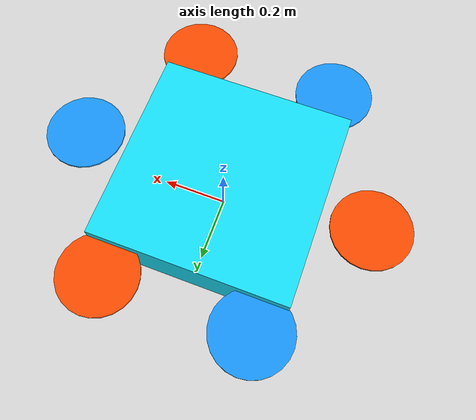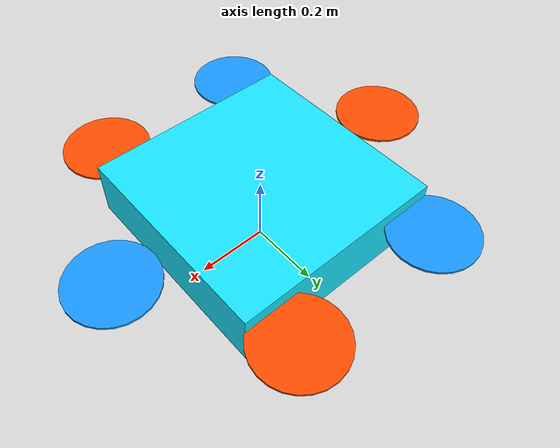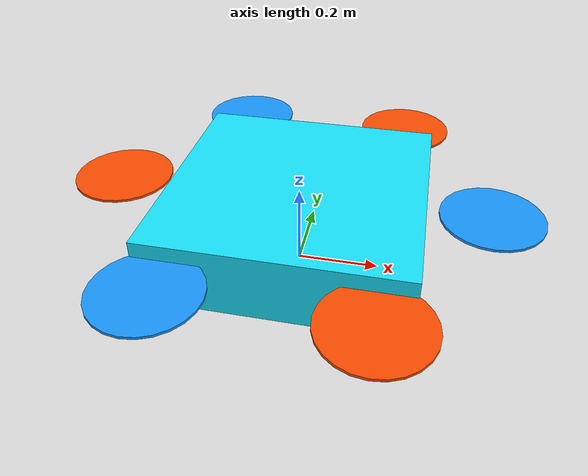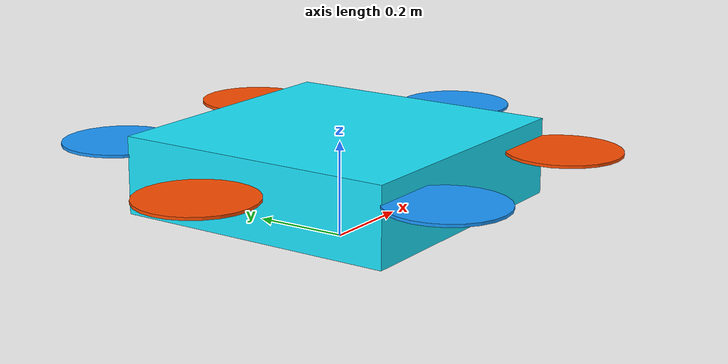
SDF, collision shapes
<?xml version="1.0" ?>
<sdf version="1.8">
  <model name="sutra_hexacopter">
    <pose>0 0 0.15 0 0 0</pose>
    <static>false</static>
    <self_collide>false</self_collide>

    <!-- ── Main Hexacopter Airframe Link ──────────────────────────────── -->
    <link name="base_link">
      <pose>0 0 0 0 0 0</pose>
      <inertial>
        <mass>2.20</mass>
        <inertia>
          <ixx>0.0450</ixx>
          <ixy>0</ixy>
          <ixz>0</ixz>
          <iyy>0.0450</iyy>
          <iyz>0</iyz>
          <izz>0.0820</izz>
        </inertia>
      </inertial>

      <collision name="base_collision">
        <geometry>
          <box><size>0.60 0.60 0.16</size></box>
        </geometry>
      </collision>

      <!-- 3D Firefly Hexacopter Frame Mesh -->
      <visual name="hexacopter_chassis">
        <geometry>
          <mesh>
            <scale>1.5 1.5 1.5</scale>
            <uri>model://x3_uav/meshes/firefly.dae</uri>
          </mesh>
        </geometry>
      </visual>

      <!-- Sensor Visual Pods -->
      <!-- 1. Top 360° LiDAR Puck -->
      <visual name="lidar_puck">
        <pose>0 0 0.08 0 0 0</pose>
        <geometry><cylinder><radius>0.04</radius><length>0.03</length></cylinder></geometry>
        <material><ambient>0.0 0.8 1.0 1</ambient><diffuse>0.1 0.9 1.0 1</diffuse><emissive>0.0 0.5 0.9 1</emissive></material>
      </visual>

      <!-- 2. Dual Camera Gimbal (RGB + FLIR) -->
      <visual name="gimbal_pod">
        <pose>0.16 0 -0.04 0 0.20 0</pose>
        <geometry><box><size>0.04 0.07 0.035</size></box></geometry>
        <material><ambient>0.15 0.15 0.15 1</ambient><diffuse>0.25 0.25 0.25 1</diffuse></material>
      </visual>

      <!-- 3. LiPo High-Capacity 6S Battery -->
      <visual name="battery_pack">
        <pose>0 0 -0.035 0 0 0</pose>
        <geometry><box><size>0.14 0.06 0.045</size></box></geometry>
        <material><ambient>0.9 0.7 0.0 1</ambient><diffuse>1.0 0.8 0.0 1</diffuse></material>
      </visual>

      <!-- 4. NavSat RTK Antenna Mast -->
      <visual name="gps_mast">
        <pose>-0.12 -0.08 0.08 0 0 0</pose>
        <geometry><cylinder><radius>0.004</radius><length>0.10</length></cylinder></geometry>
        <material><ambient>0.1 0.1 0.1 1</ambient><diffuse>0.2 0.2 0.2 1</diffuse></material>
      </visual>
      <visual name="gps_puck">
        <pose>-0.12 -0.08 0.13 0 0 0</pose>
        <geometry><cylinder><radius>0.022</radius><length>0.01</length></cylinder></geometry>
        <material><ambient>0.9 0.9 0.9 1</ambient><diffuse>1.0 1.0 1.0 1</diffuse></material>
      </visual>

      <!-- 📡 9-DOF AVIONICS SENSOR SUITE                                  -->

      <!-- 1. IMU (250Hz Accelerometer + Gyroscope) -->
      <sensor name="imu_sensor" type="imu">
        <always_on>1</always_on>
        <update_rate>250.0</update_rate>
        <topic>imu</topic>
        <imu>
          <angular_velocity>
            <x><noise type="gaussian"><stddev>0.00015</stddev><bias_mean>0.00001</bias_mean></noise></x>
            <y><noise type="gaussian"><stddev>0.00015</stddev><bias_mean>0.00001</bias_mean></noise></y>
            <z><noise type="gaussian"><stddev>0.00015</stddev><bias_mean>0.00001</bias_mean></noise></z>
          </angular_velocity>
          <linear_acceleration>
            <x><noise type="gaussian"><stddev>0.008</stddev><bias_mean>0.001</bias_mean></noise></x>
            <y><noise type="gaussian"><stddev>0.008</stddev><bias_mean>0.001</bias_mean></noise></y>
            <z><noise type="gaussian"><stddev>0.008</stddev><bias_mean>0.001</bias_mean></noise></z>
          </linear_acceleration>
        </imu>
      </sensor>

      <!-- 2. Barometer (50Hz Absolute Pressure for EKF2 Altitude Fusion) -->
      <sensor name="air_pressure_sensor" type="air_pressure">
        <always_on>1</always_on>
        <update_rate>50.0</update_rate>
        <topic>air_pressure</topic>
        <air_pressure>
          <reference_altitude>0.0</reference_altitude>
          <pressure><noise type="gaussian"><mean>0.0</mean><stddev>0.01</stddev></noise></pressure>
        </air_pressure>
      </sensor>

      <!-- 3. 3-Axis Magnetometer (50Hz Earth Magnetic Field) -->
      <sensor name="magnetometer_sensor" type="magnetometer">
        <always_on>1</always_on>
        <update_rate>50.0</update_rate>
        <topic>magnetic_field</topic>
        <magnetometer>
          <x><noise type="gaussian"><mean>0.0</mean><stddev>0.0001</stddev></noise></x>
          <y><noise type="gaussian"><mean>0.0</mean><stddev>0.0001</stddev></noise></y>
          <z><noise type="gaussian"><mean>0.0</mean><stddev>0.0001</stddev></noise></z>
        </magnetometer>
      </sensor>

      <!-- 4. NavSat RTK GNSS (10Hz Precision Geolocation) -->
      <sensor name="navsat_sensor" type="navsat">
        <always_on>1</always_on>
        <update_rate>10.0</update_rate>
        <topic>navsat</topic>
      </sensor>

      <!-- 5. 360° 3D GPU LiDAR (10Hz 32-Channel OctoMap Sensor) -->
      <sensor name="gpu_lidar" type="gpu_lidar">
        <pose>0 0 0.08 0 0 0</pose>
        <always_on>1</always_on>
        <update_rate>10.0</update_rate>
        <topic>scan/points</topic>
        <lidar>
          <scan>
            <horizontal><samples>720</samples><resolution>1</resolution><min_angle>-3.14159265</min_angle><max_angle>3.14159265</max_angle></horizontal>
            <vertical><samples>32</samples><resolution>1</resolution><min_angle>-0.436332</min_angle><max_angle>0.261799</max_angle></vertical>
          </scan>
          <range><min>0.15</min><max>60.0</max><resolution>0.01</resolution></range>
          <noise><type>gaussian</type><mean>0.0</mean><stddev>0.01</stddev></noise>
        </lidar>
      </sensor>

      <!-- 6. Downward Laser Altimeter (50Hz Precision Rangefinder) -->
      <sensor name="altimeter_rangefinder" type="ray">
        <pose>0 0 -0.04 0 1.5707963 0</pose>
        <always_on>1</always_on>
        <update_rate>50.0</update_rate>
        <topic>rangefinder/distance</topic>
        <ray>
          <scan><horizontal><samples>1</samples><resolution>1</resolution><min_angle>0.0</min_angle><max_angle>0.0</max_angle></horizontal></scan>
          <range><min>0.05</min><max>50.0</max><resolution>0.005</resolution></range>
          <noise><type>gaussian</type><mean>0.0</mean><stddev>0.003</stddev></noise>
        </ray>
      </sensor>

      <!-- 7. Forward Optical RGB Camera (30Hz 1280x720 HD) -->
      <sensor name="camera_rgb" type="camera">
        <pose>0.16 -0.015 -0.03 0 0.20 0</pose>
        <always_on>1</always_on>
        <update_rate>30.0</update_rate>
        <topic>camera/image_raw</topic>
        <camera>
          <horizontal_fov>1.4</horizontal_fov>
          <image><width>1280</width><height>720</height><format>R8G8B8</format></image>
          <clip><near>0.1</near><far>200.0</far></clip>
        </camera>
      </sensor>

      <!-- 8. Forward/Downward FLIR LWIR Thermal Camera (30Hz 640x480) -->
      <sensor name="camera_thermal" type="thermal">
        <pose>0.16 0.015 -0.03 0 0.20 0</pose>
        <always_on>1</always_on>
        <update_rate>30.0</update_rate>
        <topic>thermal_camera/image_raw</topic>
        <camera>
          <horizontal_fov>1.05</horizontal_fov>
          <image><width>640</width><height>480</height><format>L8</format></image>
          <clip><near>0.1</near><far>150.0</far></clip>
        </camera>
      </sensor>

      <!-- 9. mmWave Radar (20Hz Penetration Radar) -->
      <sensor name="radar_sensor" type="ray">
        <pose>0 0 -0.05 0 1.5707963 0</pose>
        <always_on>1</always_on>
        <update_rate>20.0</update_rate>
        <topic>radar/scan</topic>
        <ray>
          <scan><horizontal><samples>64</samples><resolution>1</resolution><min_angle>-0.5236</min_angle><max_angle>0.5236</max_angle></horizontal></scan>
          <range><min>0.2</min><max>45.0</max></range>
        </ray>
      </sensor>
    </link>

    <!-- ── 6x Rotor Links & Joints (Hexa-X Geometry, 60° Spacing, R=0.45m) ── -->

    <!-- Rotor 0: 0° (Front-Right, CCW) -->
    <link name="rotor_0">
      <pose>0.45 0.0 0.04 0 0 0</pose>
      <inertial><mass>0.008</mass><inertia><ixx>1e-06</ixx><iyy>5e-05</iyy><izz>5e-05</izz></inertia></inertial>
      <collision name="col"><geometry><cylinder><radius>0.12</radius><length>0.006</length></cylinder></geometry></collision>
      <visual name="vis"><geometry><mesh><scale>0.12 0.12 0.12</scale><uri>model://x3_uav/meshes/propeller_ccw.dae</uri></mesh></geometry><material><ambient>0.0 0.5 1.0 1</ambient><diffuse>0.1 0.6 1.0 1</diffuse></material></visual>
    </link>
    <joint name="rotor_0_joint" type="revolute"><child>rotor_0</child><parent>base_link</parent><axis><xyz>0 0 1</xyz><limit><lower>-1e16</lower><upper>1e16</upper></limit></axis></joint>

    <!-- Rotor 1: 60° (Front-Left, CW) -->
    <link name="rotor_1">
      <pose>0.225 0.3897 0.04 0 0 0</pose>
      <inertial><mass>0.008</mass><inertia><ixx>1e-06</ixx><iyy>5e-05</iyy><izz>5e-05</izz></inertia></inertial>
      <collision name="col"><geometry><cylinder><radius>0.12</radius><length>0.006</length></cylinder></geometry></collision>
      <visual name="vis"><geometry><mesh><scale>0.12 0.12 0.12</scale><uri>model://x3_uav/meshes/propeller_cw.dae</uri></mesh></geometry><material><ambient>1.0 0.2 0.0 1</ambient><diffuse>1.0 0.3 0.0 1</diffuse></material></visual>
    </link>
    <joint name="rotor_1_joint" type="revolute"><child>rotor_1</child><parent>base_link</parent><axis><xyz>0 0 1</xyz><limit><lower>-1e16</lower><upper>1e16</upper></limit></axis></joint>

    <!-- Rotor 2: 120° (Mid-Left, CCW) -->
    <link name="rotor_2">
      <pose>-0.225 0.3897 0.04 0 0 0</pose>
      <inertial><mass>0.008</mass><inertia><ixx>1e-06</ixx><iyy>5e-05</iyy><izz>5e-05</izz></inertia></inertial>
      <collision name="col"><geometry><cylinder><radius>0.12</radius><length>0.006</length></cylinder></geometry></collision>
      <visual name="vis"><geometry><mesh><scale>0.12 0.12 0.12</scale><uri>model://x3_uav/meshes/propeller_ccw.dae</uri></mesh></geometry><material><ambient>0.0 0.5 1.0 1</ambient><diffuse>0.1 0.6 1.0 1</diffuse></material></visual>
    </link>
    <joint name="rotor_2_joint" type="revolute"><child>rotor_2</child><parent>base_link</parent><axis><xyz>0 0 1</xyz><limit><lower>-1e16</lower><upper>1e16</upper></limit></axis></joint>

    <!-- Rotor 3: 180° (Rear, CW) -->
    <link name="rotor_3">
      <pose>-0.45 0.0 0.04 0 0 0</pose>
      <inertial><mass>0.008</mass><inertia><ixx>1e-06</ixx><iyy>5e-05</iyy><izz>5e-05</izz></inertia></inertial>
      <collision name="col"><geometry><cylinder><radius>0.12</radius><length>0.006</length></cylinder></geometry></collision>
      <visual name="vis"><geometry><mesh><scale>0.12 0.12 0.12</scale><uri>model://x3_uav/meshes/propeller_cw.dae</uri></mesh></geometry><material><ambient>1.0 0.2 0.0 1</ambient><diffuse>1.0 0.3 0.0 1</diffuse></material></visual>
    </link>
    <joint name="rotor_3_joint" type="revolute"><child>rotor_3</child><parent>base_link</parent><axis><xyz>0 0 1</xyz><limit><lower>-1e16</lower><upper>1e16</upper></limit></axis></joint>

    <!-- Rotor 4: 240° (Rear-Right, CCW) -->
    <link name="rotor_4">
      <pose>-0.225 -0.3897 0.04 0 0 0</pose>
      <inertial><mass>0.008</mass><inertia><ixx>1e-06</ixx><iyy>5e-05</iyy><izz>5e-05</izz></inertia></inertial>
      <collision name="col"><geometry><cylinder><radius>0.12</radius><length>0.006</length></cylinder></geometry></collision>
      <visual name="vis"><geometry><mesh><scale>0.12 0.12 0.12</scale><uri>model://x3_uav/meshes/propeller_ccw.dae</uri></mesh></geometry><material><ambient>0.0 0.5 1.0 1</ambient><diffuse>0.1 0.6 1.0 1</diffuse></material></visual>
    </link>
    <joint name="rotor_4_joint" type="revolute"><child>rotor_4</child><parent>base_link</parent><axis><xyz>0 0 1</xyz><limit><lower>-1e16</lower><upper>1e16</upper></limit></axis></joint>

    <!-- Rotor 5: 300° (Front-Right, CW) -->
    <link name="rotor_5">
      <pose>0.225 -0.3897 0.04 0 0 0</pose>
      <inertial><mass>0.008</mass><inertia><ixx>1e-06</ixx><iyy>5e-05</iyy><izz>5e-05</izz></inertia></inertial>
      <collision name="col"><geometry><cylinder><radius>0.12</radius><length>0.006</length></cylinder></geometry></collision>
      <visual name="vis"><geometry><mesh><scale>0.12 0.12 0.12</scale><uri>model://x3_uav/meshes/propeller_cw.dae</uri></mesh></geometry><material><ambient>1.0 0.2 0.0 1</ambient><diffuse>1.0 0.3 0.0 1</diffuse></material></visual>
    </link>
    <joint name="rotor_5_joint" type="revolute"><child>rotor_5</child><parent>base_link</parent><axis><xyz>0 0 1</xyz><limit><lower>-1e16</lower><upper>1e16</upper></limit></axis></joint>

    <!-- ── Actuator & Flight Control Plugins ───────────────────────────── -->
    <plugin filename="gz-sim-joint-state-publisher-system" name="gz::sim::systems::JointStatePublisher">
      <joint_name>rotor_0_joint</joint_name>
      <joint_name>rotor_1_joint</joint_name>
      <joint_name>rotor_2_joint</joint_name>
      <joint_name>rotor_3_joint</joint_name>
      <joint_name>rotor_4_joint</joint_name>
      <joint_name>rotor_5_joint</joint_name>
    </plugin>

    <plugin filename="gz-sim-velocity-control-system" name="gz::sim::systems::VelocityControl">
      <link_name>base_link</link_name>
      <topic>gazebo/command/twist</topic>
    </plugin>

    <plugin filename="gz-sim-odometry-publisher-system" name="gz::sim::systems::OdometryPublisher">
      <dimensions>3</dimensions>
    </plugin>

    <plugin filename="gz-sim-battery-system" name="gz::sim::systems::Battery">
      <battery_name>lipo6s_5000mah</battery_name>
      <voltage>22.2</voltage>
      <capacity>5.0</capacity>
      <resistance>0.002</resistance>
      <smooth_current_tau>0.98</smooth_current_tau>
      <start_on_motion>true</start_on_motion>
    </plugin>

  </model>
</sdf>
